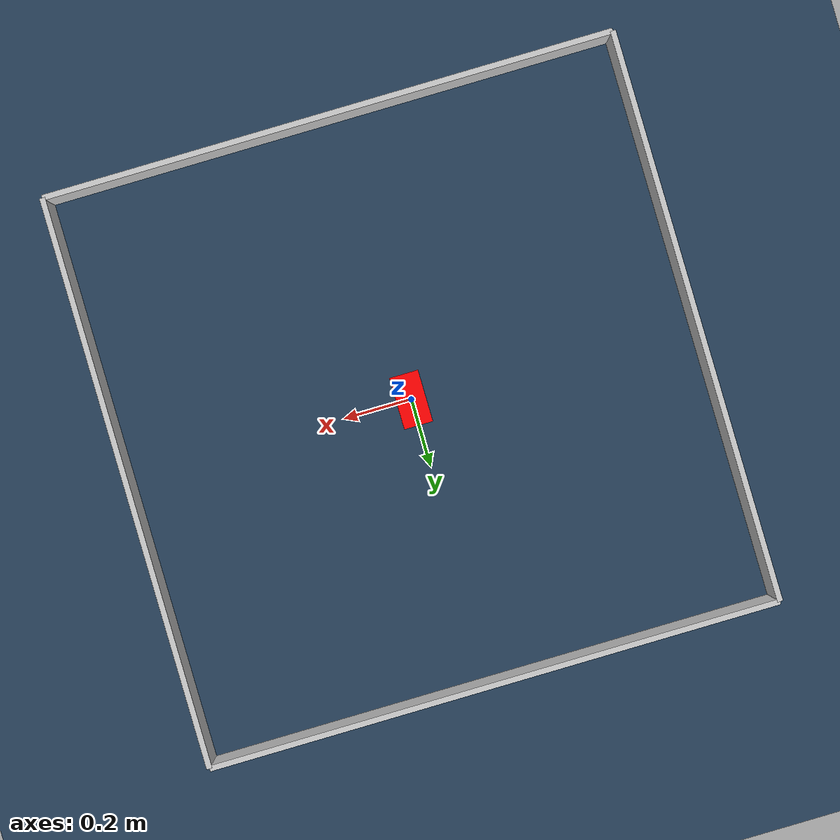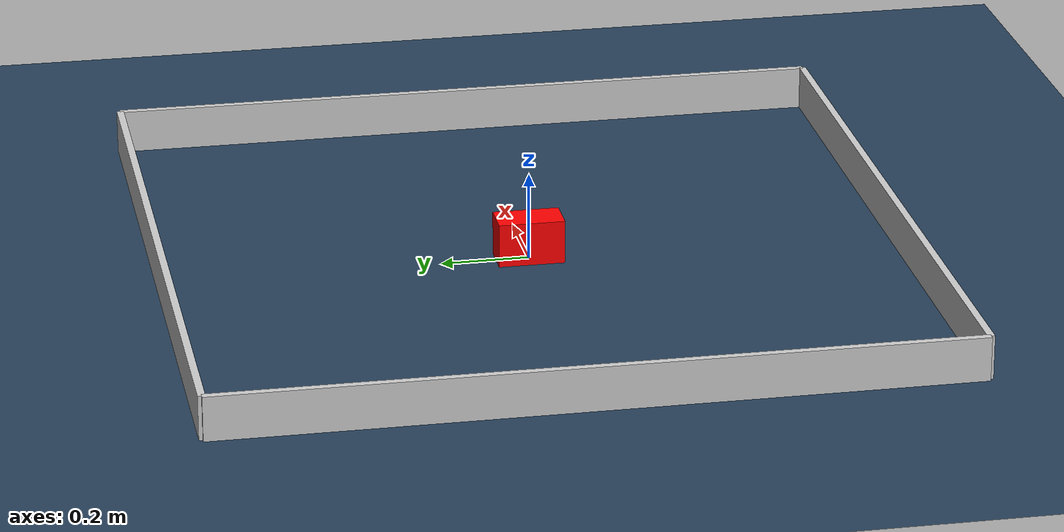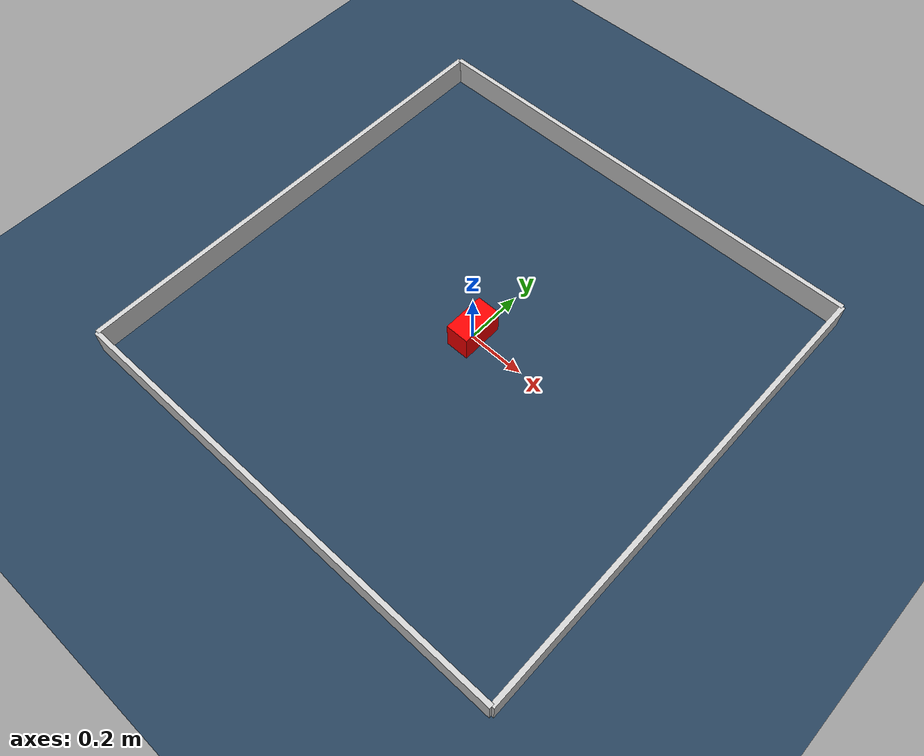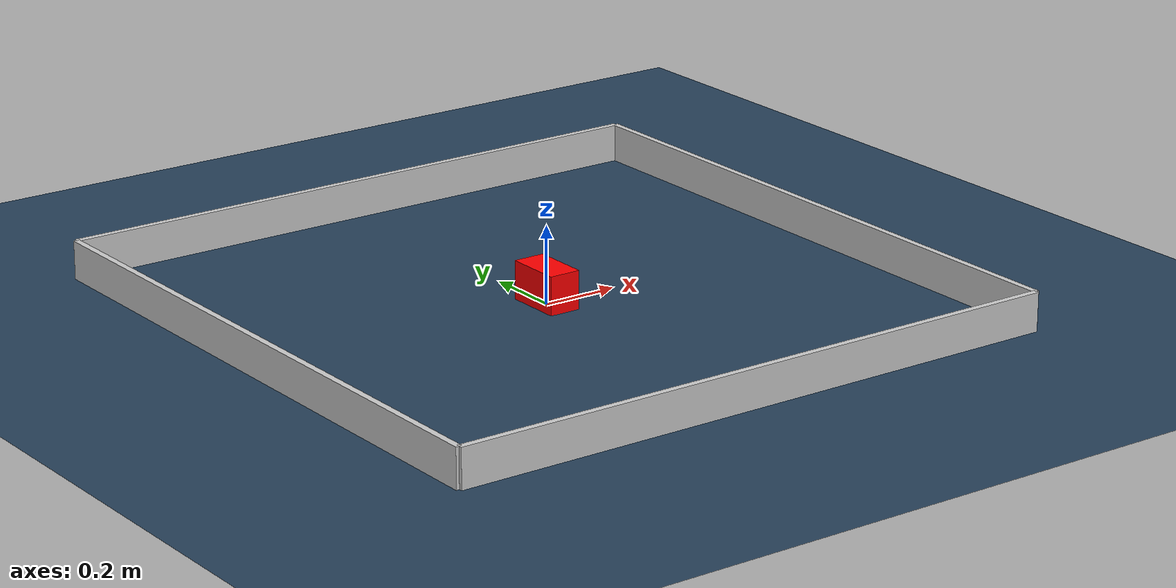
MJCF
<?xml version="1.0" ?>
<!--
  1×-scale car variant of nominal_primitive_scene_tall.xml. See
  nominal_primitive_scene_square_1x_car.xml for the rationale; only
  the obstacle dimensions differ from the square variant.
-->
<mujoco model="nominal_primitive_generation_tall_1x_car">
  <!-- See square_1x_car.xml — stable car contact requires implicitfast +
       iterations=100 + 0.002 s timestep. -->
  <option cone="elliptic" integrator="implicitfast" iterations="100" timestep="0.002"/>
  <default>
    <geom density="1"/>
  </default>
  <asset>
    <texture builtin="gradient" height="3072" rgb1="0.3 0.5 0.7" rgb2="0 0 0" type="skybox" width="512"/>
    <texture builtin="checker" height="300" mark="edge" markrgb="0.8 0.8 0.8" name="groundplane" rgb1="0.2 0.3 0.4" rgb2="0.1 0.2 0.3" type="2d" width="300"/>
    <material name="groundplane" reflectance="0.2" texrepeat="5 5" texture="groundplane" texuniform="true"/>
    <material name="robot" rgba="1.0 1.0 0.0 1.0"/>
  </asset>
  <!-- Diff-drive car body. See square_1x_car.xml for why this lives at
       top level rather than inside worldbody. -->
  <include file="../test_xml/little-car-modeling-package/assets/mjcf/little_car.xml"/>

  <worldbody>
    <light dir="0 0 -1" directional="true" pos="0 0 0.25"/>
    <geom condim="4" friction="0.5 0.005 0.001" material="groundplane" name="floor" size="0 0 0.05" type="plane"/>

    <!-- Tall object: 0.0417 x 0.075 m (depth > width) -->
    <body name="obstacle_1_movable">
      <geom condim="4" euler="0 0 0" friction="1 0.005 0.0001" mass="0.1" name="obstacle_1_movable" pos="0.0 0.0 0.05" rgba="1 0 0 1" size="0.0417 0.075 0.05" type="box"/>
      <joint type="free"/>
    </body>
    <body name="walls">
      <geom condim="4" name="wall_1" pos="-0.8333 0.0 0.05" rgba="0.8 0.8 0.8 1" size="0.0083 0.8333 0.05" type="box"/>
      <geom condim="4" name="wall_2" pos="0.8333 0.0 0.05" rgba="0.8 0.8 0.8 1" size="0.0083 0.8333 0.05" type="box"/>
      <geom condim="4" name="wall_3" pos="0.0 -0.8333 0.05" rgba="0.8 0.8 0.8 1" size="0.8333 0.0083 0.05" type="box"/>
      <geom condim="4" name="wall_4" pos="0.0 0.8333 0.05" rgba="0.8 0.8 0.8 1" size="0.8333 0.0083 0.05" type="box"/>
    </body>
  </worldbody>
</mujoco>

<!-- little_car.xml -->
<mujoco model="little_car">
  <compiler angle="radian" autolimits="true"/>
  <default>
    <geom condim="4"/>
    <joint damping="0.01" armature="0.0001"/>
  </default>
  <worldbody>
    <body name="car" pos="0 0 0.010000">
      <freejoint name="car_freejoint"/>
      <inertial pos="0.000000 0 0.037500" mass="0.350000"
                diaginertia="0.000266 0.000266 0.000286"/>
      <geom name="front_chassis_collision" type="box" pos="0.017500 0 0.037500"
            size="0.017500 0.035000 0.032500"
            rgba="0.3 0.3 0.7 1"/>
      <geom name="rear_chassis_collision" type="box" pos="-0.017500 0 0.037500"
            size="0.017500 0.035000 0.032500"
            rgba="0.25 0.25 0.6 1"/>
      <geom name="front_marker" type="box" pos="0.034000 0 0.050500"
            size="0.002000 0.015000 0.010000"
            rgba="1.0 0.2 0.2 1" contype="0" conaffinity="0"/>

      <body name="rear_support_body" pos="-0.030000 0.000000 0.002500">
        <joint name="rear_caster_joint" type="ball" damping="0.0001"/>
        <inertial pos="0 0 0" mass="0.025000"
                  diaginertia="0.000001 0.000001 0.000001"/>
        <geom name="rear_support" type="sphere"
              pos="0 0 0"
              size="0.002500"
              friction="0.000000 0.000000 0.000000"
              rgba="0.7 0.1 0.1 1"/>
      </body>

      <body name="front_support_body" pos="0.030000 0.000000 0.002500">
        <joint name="front_caster_joint" type="ball" damping="0.0001"/>
        <inertial pos="0 0 0" mass="0.025000"
                  diaginertia="0.000001 0.000001 0.000001"/>
        <geom name="front_support" type="sphere"
              pos="0 0 0"
              size="0.002500"
              friction="0.000000 0.000000 0.000000"
              rgba="0.1 0.7 0.1 1"/>
      </body>

      <body name="left_wheel" pos="0.000000 0.034000 0.015000">
        <inertial pos="0 0 0" mass="0.050000"
                  diaginertia="0.000003 0.000006 0.000003"/>
        <joint name="left_wheel_joint" type="hinge" axis="0 1 0"/>
        <geom name="left_wheel_collision" type="cylinder" size="0.015000 0.000500"
              euler="1.57079632679 0 0" rgba="0.1 0.1 0.1 1"/>
      </body>

      <body name="right_wheel" pos="0.000000 -0.034000 0.015000">
        <inertial pos="0 0 0" mass="0.050000"
                  diaginertia="0.000003 0.000006 0.000003"/>
        <joint name="right_wheel_joint" type="hinge" axis="0 1 0"/>
        <geom name="right_wheel_collision" type="cylinder" size="0.015000 0.000500"
              euler="1.57079632679 0 0" rgba="0.1 0.1 0.1 1"/>
      </body>
    </body>
  </worldbody>
  <contact>
    <exclude body1="car" body2="left_wheel"/>
    <exclude body1="car" body2="right_wheel"/>
  </contact>
  <actuator>
    <velocity name="left_wheel_drive" joint="left_wheel_joint"
              ctrlrange="-25.000000 25.000000"
              kv="0.750000" forcerange="-0.500000 0.500000"/>
    <velocity name="right_wheel_drive" joint="right_wheel_joint"
              ctrlrange="-25.000000 25.000000"
              kv="0.750000" forcerange="-0.500000 0.500000"/>
  </actuator>
</mujoco>
